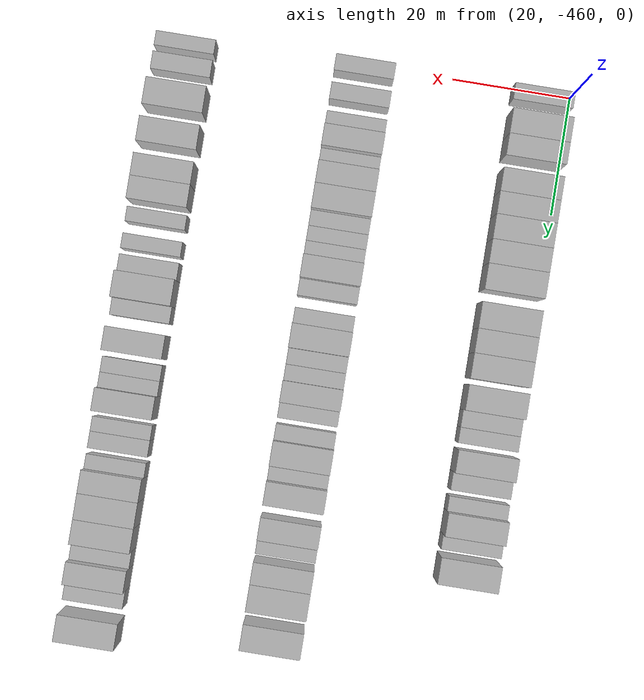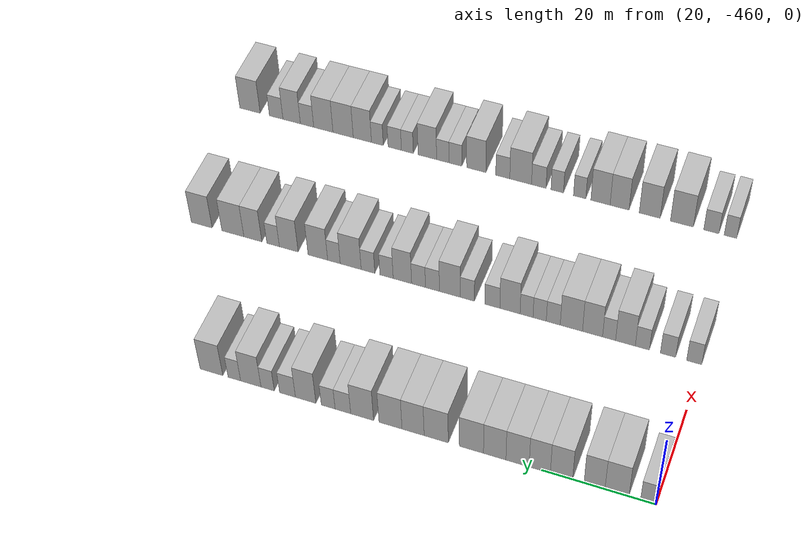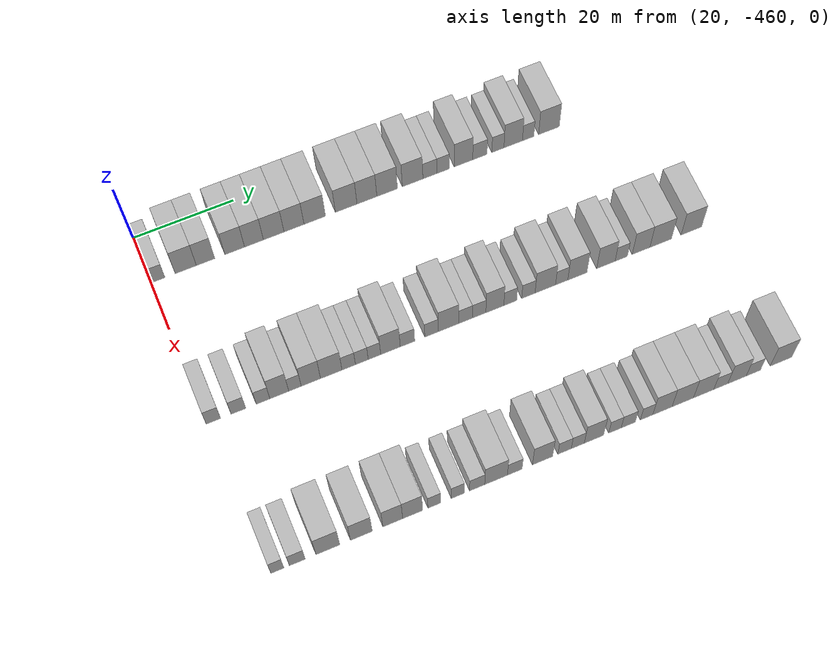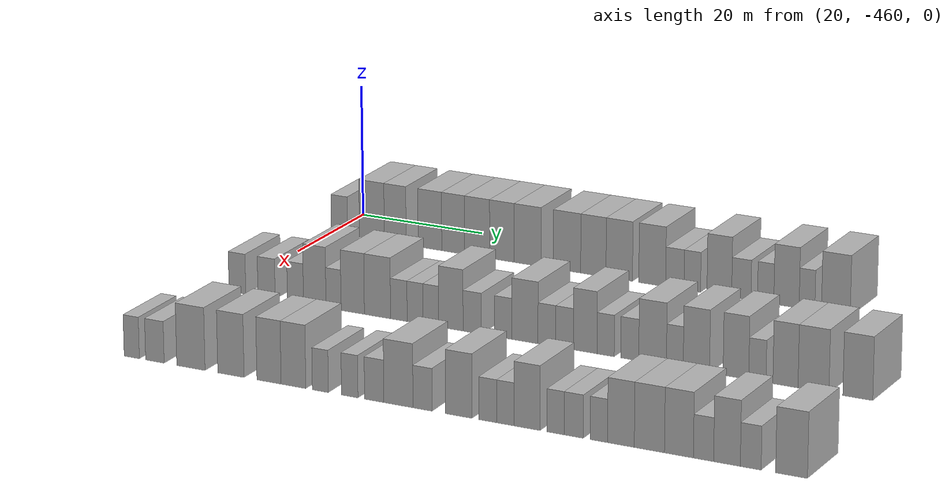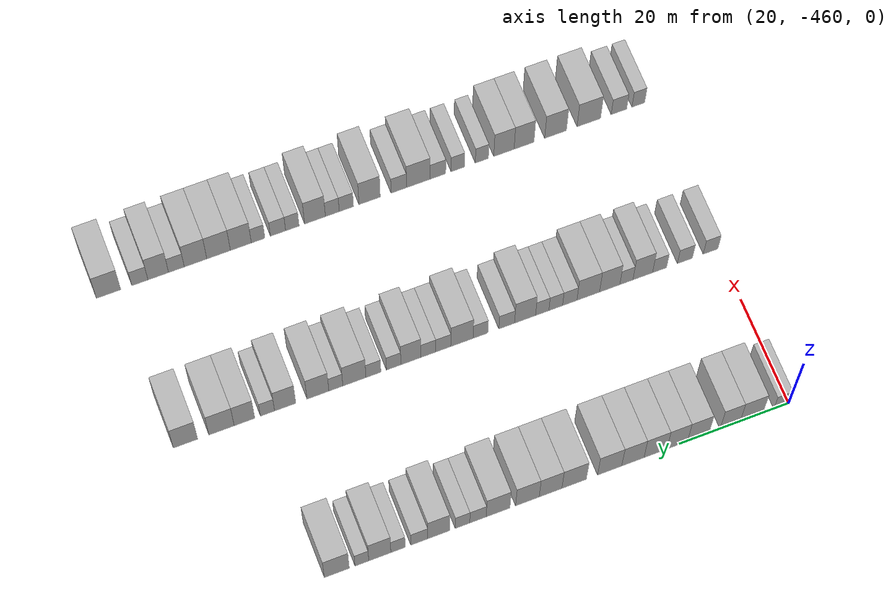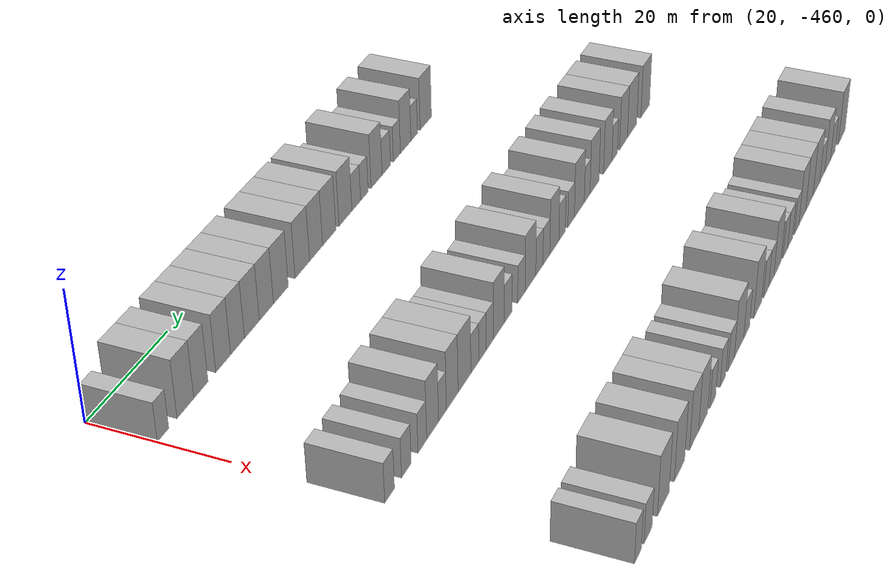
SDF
<sdf version="1.6">
 <world name="default">
  <model name="building_1">
   <static>1</static>
   <pose>25.0000 -458.6161 0 0.000000 0.000000 0.000000</pose>
   <link name="link">
    <pose>0 0 3.00 0 0 0</pose>
    <collision name="collision"><geometry><box><size>10.0000 2.7677 6.0000</size></box></geometry></collision>
    <visual name="visual">
     <cast_shadows>0</cast_shadows>
     <geometry><box><size>10.0000 2.7677 6.0000</size></box></geometry>
     <material>
      <script>
       <uri>model://HANNAS_wall/materials/scripts</uri>
       <uri>model://HANNAS_wall/materials/textures</uri>
       <name>vrc/HANNAS_wall</name>
      </script>
     </material>
    </visual>
   </link>
  </model>
  <model name="building_2">
   <static>1</static>
   <pose>25.0000 -453.1422 0 0.000000 0.000000 0.000000</pose>
   <link name="link">
    <pose>0 0 4.50 0 0 0</pose>
    <collision name="collision"><geometry><box><size>10.0000 4.1801 9.0000</size></box></geometry></collision>
    <visual name="visual">
     <cast_shadows>0</cast_shadows>
     <geometry><box><size>10.0000 4.1801 9.0000</size></box></geometry>
     <material>
      <script>
       <uri>model://HANNAS_wall/materials/scripts</uri>
       <uri>model://HANNAS_wall/materials/textures</uri>
       <name>vrc/HANNAS_wall</name>
      </script>
     </material>
    </visual>
   </link>
  </model>
  <model name="building_3">
   <static>1</static>
   <pose>25.0000 -449.2247 0 0.000000 0.000000 0.000000</pose>
   <link name="link">
    <pose>0 0 4.50 0 0 0</pose>
    <collision name="collision"><geometry><box><size>10.0000 3.6550 9.0000</size></box></geometry></collision>
    <visual name="visual">
     <cast_shadows>0</cast_shadows>
     <geometry><box><size>10.0000 3.6550 9.0000</size></box></geometry>
     <material>
      <script>
       <uri>model://HANNAS_wall/materials/scripts</uri>
       <uri>model://HANNAS_wall/materials/textures</uri>
       <name>vrc/HANNAS_wall</name>
      </script>
     </material>
    </visual>
   </link>
  </model>
  <model name="building_4">
   <static>1</static>
   <pose>25.0000 -443.4356 0 0.000000 0.000000 0.000000</pose>
   <link name="link">
    <pose>0 0 4.50 0 0 0</pose>
    <collision name="collision"><geometry><box><size>10.0000 3.9232 9.0000</size></box></geometry></collision>
    <visual name="visual">
     <cast_shadows>0</cast_shadows>
     <geometry><box><size>10.0000 3.9232 9.0000</size></box></geometry>
     <material>
      <script>
       <uri>model://HANNAS_wall/materials/scripts</uri>
       <uri>model://HANNAS_wall/materials/textures</uri>
       <name>vrc/HANNAS_wall</name>
      </script>
     </material>
    </visual>
   </link>
  </model>
  <model name="building_5">
   <static>1</static>
   <pose>25.0000 -439.5945 0 0.000000 0.000000 0.000000</pose>
   <link name="link">
    <pose>0 0 4.50 0 0 0</pose>
    <collision name="collision"><geometry><box><size>10.0000 3.7590 9.0000</size></box></geometry></collision>
    <visual name="visual">
     <cast_shadows>0</cast_shadows>
     <geometry><box><size>10.0000 3.7590 9.0000</size></box></geometry>
     <material>
      <script>
       <uri>model://HANNAS_wall/materials/scripts</uri>
       <uri>model://HANNAS_wall/materials/textures</uri>
       <name>vrc/HANNAS_wall</name>
      </script>
     </material>
    </visual>
   </link>
  </model>
  <model name="building_6">
   <static>1</static>
   <pose>25.0000 -435.6475 0 0.000000 0.000000 0.000000</pose>
   <link name="link">
    <pose>0 0 4.50 0 0 0</pose>
    <collision name="collision"><geometry><box><size>10.0000 4.1350 9.0000</size></box></geometry></collision>
    <visual name="visual">
     <cast_shadows>0</cast_shadows>
     <geometry><box><size>10.0000 4.1350 9.0000</size></box></geometry>
     <material>
      <script>
       <uri>model://HANNAS_wall/materials/scripts</uri>
       <uri>model://HANNAS_wall/materials/textures</uri>
       <name>vrc/HANNAS_wall</name>
      </script>
     </material>
    </visual>
   </link>
  </model>
  <model name="building_7">
   <static>1</static>
   <pose>25.0000 -431.5682 0 0.000000 0.000000 0.000000</pose>
   <link name="link">
    <pose>0 0 4.50 0 0 0</pose>
    <collision name="collision"><geometry><box><size>10.0000 4.0237 9.0000</size></box></geometry></collision>
    <visual name="visual">
     <cast_shadows>0</cast_shadows>
     <geometry><box><size>10.0000 4.0237 9.0000</size></box></geometry>
     <material>
      <script>
       <uri>model://HANNAS_wall/materials/scripts</uri>
       <uri>model://HANNAS_wall/materials/textures</uri>
       <name>vrc/HANNAS_wall</name>
      </script>
     </material>
    </visual>
   </link>
  </model>
  <model name="building_8">
   <static>1</static>
   <pose>25.0000 -427.3816 0 0.000000 0.000000 0.000000</pose>
   <link name="link">
    <pose>0 0 4.50 0 0 0</pose>
    <collision name="collision"><geometry><box><size>10.0000 4.3495 9.0000</size></box></geometry></collision>
    <visual name="visual">
     <cast_shadows>0</cast_shadows>
     <geometry><box><size>10.0000 4.3495 9.0000</size></box></geometry>
     <material>
      <script>
       <uri>model://HANNAS_wall/materials/scripts</uri>
       <uri>model://HANNAS_wall/materials/textures</uri>
       <name>vrc/HANNAS_wall</name>
      </script>
     </material>
    </visual>
   </link>
  </model>
  <model name="building_9">
   <static>1</static>
   <pose>25.0000 -421.0056 0 0.000000 0.000000 0.000000</pose>
   <link name="link">
    <pose>0 0 4.50 0 0 0</pose>
    <collision name="collision"><geometry><box><size>10.0000 4.4024 9.0000</size></box></geometry></collision>
    <visual name="visual">
     <cast_shadows>0</cast_shadows>
     <geometry><box><size>10.0000 4.4024 9.0000</size></box></geometry>
     <material>
      <script>
       <uri>model://HANNAS_wall/materials/scripts</uri>
       <uri>model://HANNAS_wall/materials/textures</uri>
       <name>vrc/HANNAS_wall</name>
      </script>
     </material>
    </visual>
   </link>
  </model>
  <model name="building_10">
   <static>1</static>
   <pose>25.0000 -416.7751 0 0.000000 0.000000 0.000000</pose>
   <link name="link">
    <pose>0 0 4.50 0 0 0</pose>
    <collision name="collision"><geometry><box><size>10.0000 4.0587 9.0000</size></box></geometry></collision>
    <visual name="visual">
     <cast_shadows>0</cast_shadows>
     <geometry><box><size>10.0000 4.0587 9.0000</size></box></geometry>
     <material>
      <script>
       <uri>model://HANNAS_wall/materials/scripts</uri>
       <uri>model://HANNAS_wall/materials/textures</uri>
       <name>vrc/HANNAS_wall</name>
      </script>
     </material>
    </visual>
   </link>
  </model>
  <model name="building_11">
   <static>1</static>
   <pose>25.0000 -412.6336 0 0.000000 0.000000 0.000000</pose>
   <link name="link">
    <pose>0 0 4.50 0 0 0</pose>
    <collision name="collision"><geometry><box><size>10.0000 4.2243 9.0000</size></box></geometry></collision>
    <visual name="visual">
     <cast_shadows>0</cast_shadows>
     <geometry><box><size>10.0000 4.2243 9.0000</size></box></geometry>
     <material>
      <script>
       <uri>model://HANNAS_wall/materials/scripts</uri>
       <uri>model://HANNAS_wall/materials/textures</uri>
       <name>vrc/HANNAS_wall</name>
      </script>
     </material>
    </visual>
   </link>
  </model>
  <model name="building_12">
   <static>1</static>
   <pose>25.0000 -407.3977 0 0.000000 0.000000 0.000000</pose>
   <link name="link">
    <pose>0 0 4.50 0 0 0</pose>
    <collision name="collision"><geometry><box><size>10.0000 4.2476 9.0000</size></box></geometry></collision>
    <visual name="visual">
     <cast_shadows>0</cast_shadows>
     <geometry><box><size>10.0000 4.2476 9.0000</size></box></geometry>
     <material>
      <script>
       <uri>model://HANNAS_wall/materials/scripts</uri>
       <uri>model://HANNAS_wall/materials/textures</uri>
       <name>vrc/HANNAS_wall</name>
      </script>
     </material>
    </visual>
   </link>
  </model>
  <model name="building_13">
   <static>1</static>
   <pose>25.0000 -403.8219 0 0.000000 0.000000 0.000000</pose>
   <link name="link">
    <pose>0 0 3.00 0 0 0</pose>
    <collision name="collision"><geometry><box><size>10.0000 2.9038 6.0000</size></box></geometry></collision>
    <visual name="visual">
     <cast_shadows>0</cast_shadows>
     <geometry><box><size>10.0000 2.9038 6.0000</size></box></geometry>
     <material>
      <script>
       <uri>model://HANNAS_wall/materials/scripts</uri>
       <uri>model://HANNAS_wall/materials/textures</uri>
       <name>vrc/HANNAS_wall</name>
      </script>
     </material>
    </visual>
   </link>
  </model>
  <model name="building_14">
   <static>1</static>
   <pose>25.0000 -401.0797 0 0.000000 0.000000 0.000000</pose>
   <link name="link">
    <pose>0 0 3.00 0 0 0</pose>
    <collision name="collision"><geometry><box><size>10.0000 2.5807 6.0000</size></box></geometry></collision>
    <visual name="visual">
     <cast_shadows>0</cast_shadows>
     <geometry><box><size>10.0000 2.5807 6.0000</size></box></geometry>
     <material>
      <script>
       <uri>model://HANNAS_wall/materials/scripts</uri>
       <uri>model://HANNAS_wall/materials/textures</uri>
       <name>vrc/HANNAS_wall</name>
      </script>
     </material>
    </visual>
   </link>
  </model>
  <model name="building_15">
   <static>1</static>
   <pose>25.0000 -396.8624 0 0.000000 0.000000 0.000000</pose>
   <link name="link">
    <pose>0 0 4.50 0 0 0</pose>
    <collision name="collision"><geometry><box><size>10.0000 3.8540 9.0000</size></box></geometry></collision>
    <visual name="visual">
     <cast_shadows>0</cast_shadows>
     <geometry><box><size>10.0000 3.8540 9.0000</size></box></geometry>
     <material>
      <script>
       <uri>model://HANNAS_wall/materials/scripts</uri>
       <uri>model://HANNAS_wall/materials/textures</uri>
       <name>vrc/HANNAS_wall</name>
      </script>
     </material>
    </visual>
   </link>
  </model>
  <model name="building_16">
   <static>1</static>
   <pose>25.0000 -393.4373 0 0.000000 0.000000 0.000000</pose>
   <link name="link">
    <pose>0 0 3.00 0 0 0</pose>
    <collision name="collision"><geometry><box><size>10.0000 2.9962 6.0000</size></box></geometry></collision>
    <visual name="visual">
     <cast_shadows>0</cast_shadows>
     <geometry><box><size>10.0000 2.9962 6.0000</size></box></geometry>
     <material>
      <script>
       <uri>model://HANNAS_wall/materials/scripts</uri>
       <uri>model://HANNAS_wall/materials/textures</uri>
       <name>vrc/HANNAS_wall</name>
      </script>
     </material>
    </visual>
   </link>
  </model>
  <model name="building_17">
   <static>1</static>
   <pose>25.0000 -389.6744 0 0.000000 0.000000 0.000000</pose>
   <link name="link">
    <pose>0 0 3.00 0 0 0</pose>
    <collision name="collision"><geometry><box><size>10.0000 2.5295 6.0000</size></box></geometry></collision>
    <visual name="visual">
     <cast_shadows>0</cast_shadows>
     <geometry><box><size>10.0000 2.5295 6.0000</size></box></geometry>
     <material>
      <script>
       <uri>model://HANNAS_wall/materials/scripts</uri>
       <uri>model://HANNAS_wall/materials/textures</uri>
       <name>vrc/HANNAS_wall</name>
      </script>
     </material>
    </visual>
   </link>
  </model>
  <model name="building_18">
   <static>1</static>
   <pose>25.0000 -386.4665 0 0.000000 0.000000 0.000000</pose>
   <link name="link">
    <pose>0 0 4.50 0 0 0</pose>
    <collision name="collision"><geometry><box><size>10.0000 3.8864 9.0000</size></box></geometry></collision>
    <visual name="visual">
     <cast_shadows>0</cast_shadows>
     <geometry><box><size>10.0000 3.8864 9.0000</size></box></geometry>
     <material>
      <script>
       <uri>model://HANNAS_wall/materials/scripts</uri>
       <uri>model://HANNAS_wall/materials/textures</uri>
       <name>vrc/HANNAS_wall</name>
      </script>
     </material>
    </visual>
   </link>
  </model>
  <model name="building_19">
   <static>1</static>
   <pose>25.0000 -383.3175 0 0.000000 0.000000 0.000000</pose>
   <link name="link">
    <pose>0 0 3.00 0 0 0</pose>
    <collision name="collision"><geometry><box><size>10.0000 2.4115 6.0000</size></box></geometry></collision>
    <visual name="visual">
     <cast_shadows>0</cast_shadows>
     <geometry><box><size>10.0000 2.4115 6.0000</size></box></geometry>
     <material>
      <script>
       <uri>model://HANNAS_wall/materials/scripts</uri>
       <uri>model://HANNAS_wall/materials/textures</uri>
       <name>vrc/HANNAS_wall</name>
      </script>
     </material>
    </visual>
   </link>
  </model>
  <model name="building_20">
   <static>1</static>
   <pose>25.0000 -378.9247 0 0.000000 0.000000 0.000000</pose>
   <link name="link">
    <pose>0 0 4.50 0 0 0</pose>
    <collision name="collision"><geometry><box><size>10.0000 4.3742 9.0000</size></box></geometry></collision>
    <visual name="visual">
     <cast_shadows>0</cast_shadows>
     <geometry><box><size>10.0000 4.3742 9.0000</size></box></geometry>
     <material>
      <script>
       <uri>model://HANNAS_wall/materials/scripts</uri>
       <uri>model://HANNAS_wall/materials/textures</uri>
       <name>vrc/HANNAS_wall</name>
      </script>
     </material>
    </visual>
   </link>
  </model>
  <model name="building_208">
   <static>1</static>
   <pose>55.0000 -458.6232 0 0.000000 0.000000 0.000000</pose>
   <link name="link">
    <pose>0 0 3.00 0 0 0</pose>
    <collision name="collision"><geometry><box><size>10.0000 2.7536 6.0000</size></box></geometry></collision>
    <visual name="visual">
     <cast_shadows>0</cast_shadows>
     <geometry><box><size>10.0000 2.7536 6.0000</size></box></geometry>
     <material>
      <script>
       <uri>model://HANNAS_wall/materials/scripts</uri>
       <uri>model://HANNAS_wall/materials/textures</uri>
       <name>vrc/HANNAS_wall</name>
      </script>
     </material>
    </visual>
   </link>
  </model>
  <model name="building_209">
   <static>1</static>
   <pose>55.0000 -453.8382 0 0.000000 0.000000 0.000000</pose>
   <link name="link">
    <pose>0 0 3.00 0 0 0</pose>
    <collision name="collision"><geometry><box><size>10.0000 2.8163 6.0000</size></box></geometry></collision>
    <visual name="visual">
     <cast_shadows>0</cast_shadows>
     <geometry><box><size>10.0000 2.8163 6.0000</size></box></geometry>
     <material>
      <script>
       <uri>model://HANNAS_wall/materials/scripts</uri>
       <uri>model://HANNAS_wall/materials/textures</uri>
       <name>vrc/HANNAS_wall</name>
      </script>
     </material>
    </visual>
   </link>
  </model>
  <model name="building_210">
   <static>1</static>
   <pose>55.0000 -449.1211 0 0.000000 0.000000 0.000000</pose>
   <link name="link">
    <pose>0 0 3.00 0 0 0</pose>
    <collision name="collision"><geometry><box><size>10.0000 2.6180 6.0000</size></box></geometry></collision>
    <visual name="visual">
     <cast_shadows>0</cast_shadows>
     <geometry><box><size>10.0000 2.6180 6.0000</size></box></geometry>
     <material>
      <script>
       <uri>model://HANNAS_wall/materials/scripts</uri>
       <uri>model://HANNAS_wall/materials/textures</uri>
       <name>vrc/HANNAS_wall</name>
      </script>
     </material>
    </visual>
   </link>
  </model>
  <model name="building_211">
   <static>1</static>
   <pose>55.0000 -445.9911 0 0.000000 0.000000 0.000000</pose>
   <link name="link">
    <pose>0 0 4.50 0 0 0</pose>
    <collision name="collision"><geometry><box><size>10.0000 3.6418 9.0000</size></box></geometry></collision>
    <visual name="visual">
     <cast_shadows>0</cast_shadows>
     <geometry><box><size>10.0000 3.6418 9.0000</size></box></geometry>
     <material>
      <script>
       <uri>model://HANNAS_wall/materials/scripts</uri>
       <uri>model://HANNAS_wall/materials/textures</uri>
       <name>vrc/HANNAS_wall</name>
      </script>
     </material>
    </visual>
   </link>
  </model>
  <model name="building_212">
   <static>1</static>
   <pose>55.0000 -442.9572 0 0.000000 0.000000 0.000000</pose>
   <link name="link">
    <pose>0 0 3.00 0 0 0</pose>
    <collision name="collision"><geometry><box><size>10.0000 2.4260 6.0000</size></box></geometry></collision>
    <visual name="visual">
     <cast_shadows>0</cast_shadows>
     <geometry><box><size>10.0000 2.4260 6.0000</size></box></geometry>
     <material>
      <script>
       <uri>model://HANNAS_wall/materials/scripts</uri>
       <uri>model://HANNAS_wall/materials/textures</uri>
       <name>vrc/HANNAS_wall</name>
      </script>
     </material>
    </visual>
   </link>
  </model>
  <model name="building_213">
   <static>1</static>
   <pose>55.0000 -439.8711 0 0.000000 0.000000 0.000000</pose>
   <link name="link">
    <pose>0 0 4.50 0 0 0</pose>
    <collision name="collision"><geometry><box><size>10.0000 3.7462 9.0000</size></box></geometry></collision>
    <visual name="visual">
     <cast_shadows>0</cast_shadows>
     <geometry><box><size>10.0000 3.7462 9.0000</size></box></geometry>
     <material>
      <script>
       <uri>model://HANNAS_wall/materials/scripts</uri>
       <uri>model://HANNAS_wall/materials/textures</uri>
       <name>vrc/HANNAS_wall</name>
      </script>
     </material>
    </visual>
   </link>
  </model>
  <model name="building_214">
   <static>1</static>
   <pose>55.0000 -435.9100 0 0.000000 0.000000 0.000000</pose>
   <link name="link">
    <pose>0 0 4.50 0 0 0</pose>
    <collision name="collision"><geometry><box><size>10.0000 4.1759 9.0000</size></box></geometry></collision>
    <visual name="visual">
     <cast_shadows>0</cast_shadows>
     <geometry><box><size>10.0000 4.1759 9.0000</size></box></geometry>
     <material>
      <script>
       <uri>model://HANNAS_wall/materials/scripts</uri>
       <uri>model://HANNAS_wall/materials/textures</uri>
       <name>vrc/HANNAS_wall</name>
      </script>
     </material>
    </visual>
   </link>
  </model>
  <model name="building_215">
   <static>1</static>
   <pose>55.0000 -432.5032 0 0.000000 0.000000 0.000000</pose>
   <link name="link">
    <pose>0 0 3.00 0 0 0</pose>
    <collision name="collision"><geometry><box><size>10.0000 2.6378 6.0000</size></box></geometry></collision>
    <visual name="visual">
     <cast_shadows>0</cast_shadows>
     <geometry><box><size>10.0000 2.6378 6.0000</size></box></geometry>
     <material>
      <script>
       <uri>model://HANNAS_wall/materials/scripts</uri>
       <uri>model://HANNAS_wall/materials/textures</uri>
       <name>vrc/HANNAS_wall</name>
      </script>
     </material>
    </visual>
   </link>
  </model>
  <model name="building_216">
   <static>1</static>
   <pose>55.0000 -429.9304 0 0.000000 0.000000 0.000000</pose>
   <link name="link">
    <pose>0 0 3.00 0 0 0</pose>
    <collision name="collision"><geometry><box><size>10.0000 2.5078 6.0000</size></box></geometry></collision>
    <visual name="visual">
     <cast_shadows>0</cast_shadows>
     <geometry><box><size>10.0000 2.5078 6.0000</size></box></geometry>
     <material>
      <script>
       <uri>model://HANNAS_wall/materials/scripts</uri>
       <uri>model://HANNAS_wall/materials/textures</uri>
       <name>vrc/HANNAS_wall</name>
      </script>
     </material>
    </visual>
   </link>
  </model>
  <model name="building_217">
   <static>1</static>
   <pose>55.0000 -427.4491 0 0.000000 0.000000 0.000000</pose>
   <link name="link">
    <pose>0 0 3.00 0 0 0</pose>
    <collision name="collision"><geometry><box><size>10.0000 2.4548 6.0000</size></box></geometry></collision>
    <visual name="visual">
     <cast_shadows>0</cast_shadows>
     <geometry><box><size>10.0000 2.4548 6.0000</size></box></geometry>
     <material>
      <script>
       <uri>model://HANNAS_wall/materials/scripts</uri>
       <uri>model://HANNAS_wall/materials/textures</uri>
       <name>vrc/HANNAS_wall</name>
      </script>
     </material>
    </visual>
   </link>
  </model>
  <model name="building_218">
   <static>1</static>
   <pose>55.0000 -424.2969 0 0.000000 0.000000 0.000000</pose>
   <link name="link">
    <pose>0 0 4.50 0 0 0</pose>
    <collision name="collision"><geometry><box><size>10.0000 3.8495 9.0000</size></box></geometry></collision>
    <visual name="visual">
     <cast_shadows>0</cast_shadows>
     <geometry><box><size>10.0000 3.8495 9.0000</size></box></geometry>
     <material>
      <script>
       <uri>model://HANNAS_wall/materials/scripts</uri>
       <uri>model://HANNAS_wall/materials/textures</uri>
       <name>vrc/HANNAS_wall</name>
      </script>
     </material>
    </visual>
   </link>
  </model>
  <model name="building_219">
   <static>1</static>
   <pose>55.0000 -420.9403 0 0.000000 0.000000 0.000000</pose>
   <link name="link">
    <pose>0 0 3.00 0 0 0</pose>
    <collision name="collision"><geometry><box><size>10.0000 2.8637 6.0000</size></box></geometry></collision>
    <visual name="visual">
     <cast_shadows>0</cast_shadows>
     <geometry><box><size>10.0000 2.8637 6.0000</size></box></geometry>
     <material>
      <script>
       <uri>model://HANNAS_wall/materials/scripts</uri>
       <uri>model://HANNAS_wall/materials/textures</uri>
       <name>vrc/HANNAS_wall</name>
      </script>
     </material>
    </visual>
   </link>
  </model>
  <model name="building_220">
   <static>1</static>
   <pose>55.0000 -416.1556 0 0.000000 0.000000 0.000000</pose>
   <link name="link">
    <pose>0 0 3.00 0 0 0</pose>
    <collision name="collision"><geometry><box><size>10.0000 2.7057 6.0000</size></box></geometry></collision>
    <visual name="visual">
     <cast_shadows>0</cast_shadows>
     <geometry><box><size>10.0000 2.7057 6.0000</size></box></geometry>
     <material>
      <script>
       <uri>model://HANNAS_wall/materials/scripts</uri>
       <uri>model://HANNAS_wall/materials/textures</uri>
       <name>vrc/HANNAS_wall</name>
      </script>
     </material>
    </visual>
   </link>
  </model>
  <model name="building_221">
   <static>1</static>
   <pose>55.0000 -412.7733 0 0.000000 0.000000 0.000000</pose>
   <link name="link">
    <pose>0 0 4.50 0 0 0</pose>
    <collision name="collision"><geometry><box><size>10.0000 4.0590 9.0000</size></box></geometry></collision>
    <visual name="visual">
     <cast_shadows>0</cast_shadows>
     <geometry><box><size>10.0000 4.0590 9.0000</size></box></geometry>
     <material>
      <script>
       <uri>model://HANNAS_wall/materials/scripts</uri>
       <uri>model://HANNAS_wall/materials/textures</uri>
       <name>vrc/HANNAS_wall</name>
      </script>
     </material>
    </visual>
   </link>
  </model>
  <model name="building_222">
   <static>1</static>
   <pose>55.0000 -409.3810 0 0.000000 0.000000 0.000000</pose>
   <link name="link">
    <pose>0 0 3.00 0 0 0</pose>
    <collision name="collision"><geometry><box><size>10.0000 2.7257 6.0000</size></box></geometry></collision>
    <visual name="visual">
     <cast_shadows>0</cast_shadows>
     <geometry><box><size>10.0000 2.7257 6.0000</size></box></geometry>
     <material>
      <script>
       <uri>model://HANNAS_wall/materials/scripts</uri>
       <uri>model://HANNAS_wall/materials/textures</uri>
       <name>vrc/HANNAS_wall</name>
      </script>
     </material>
    </visual>
   </link>
  </model>
  <model name="building_223">
   <static>1</static>
   <pose>55.0000 -406.6662 0 0.000000 0.000000 0.000000</pose>
   <link name="link">
    <pose>0 0 3.00 0 0 0</pose>
    <collision name="collision"><geometry><box><size>10.0000 2.7038 6.0000</size></box></geometry></collision>
    <visual name="visual">
     <cast_shadows>0</cast_shadows>
     <geometry><box><size>10.0000 2.7038 6.0000</size></box></geometry>
     <material>
      <script>
       <uri>model://HANNAS_wall/materials/scripts</uri>
       <uri>model://HANNAS_wall/materials/textures</uri>
       <name>vrc/HANNAS_wall</name>
      </script>
     </material>
    </visual>
   </link>
  </model>
  <model name="building_224">
   <static>1</static>
   <pose>55.0000 -403.5092 0 0.000000 0.000000 0.000000</pose>
   <link name="link">
    <pose>0 0 4.50 0 0 0</pose>
    <collision name="collision"><geometry><box><size>10.0000 3.6102 9.0000</size></box></geometry></collision>
    <visual name="visual">
     <cast_shadows>0</cast_shadows>
     <geometry><box><size>10.0000 3.6102 9.0000</size></box></geometry>
     <material>
      <script>
       <uri>model://HANNAS_wall/materials/scripts</uri>
       <uri>model://HANNAS_wall/materials/textures</uri>
       <name>vrc/HANNAS_wall</name>
      </script>
     </material>
    </visual>
   </link>
  </model>
  <model name="building_225">
   <static>1</static>
   <pose>55.0000 -400.4007 0 0.000000 0.000000 0.000000</pose>
   <link name="link">
    <pose>0 0 3.00 0 0 0</pose>
    <collision name="collision"><geometry><box><size>10.0000 2.6067 6.0000</size></box></geometry></collision>
    <visual name="visual">
     <cast_shadows>0</cast_shadows>
     <geometry><box><size>10.0000 2.6067 6.0000</size></box></geometry>
     <material>
      <script>
       <uri>model://HANNAS_wall/materials/scripts</uri>
       <uri>model://HANNAS_wall/materials/textures</uri>
       <name>vrc/HANNAS_wall</name>
      </script>
     </material>
    </visual>
   </link>
  </model>
  <model name="building_226">
   <static>1</static>
   <pose>55.0000 -396.7456 0 0.000000 0.000000 0.000000</pose>
   <link name="link">
    <pose>0 0 3.00 0 0 0</pose>
    <collision name="collision"><geometry><box><size>10.0000 2.7034 6.0000</size></box></geometry></collision>
    <visual name="visual">
     <cast_shadows>0</cast_shadows>
     <geometry><box><size>10.0000 2.7034 6.0000</size></box></geometry>
     <material>
      <script>
       <uri>model://HANNAS_wall/materials/scripts</uri>
       <uri>model://HANNAS_wall/materials/textures</uri>
       <name>vrc/HANNAS_wall</name>
      </script>
     </material>
    </visual>
   </link>
  </model>
  <model name="building_227">
   <static>1</static>
   <pose>55.0000 -393.3171 0 0.000000 0.000000 0.000000</pose>
   <link name="link">
    <pose>0 0 4.50 0 0 0</pose>
    <collision name="collision"><geometry><box><size>10.0000 4.1537 9.0000</size></box></geometry></collision>
    <visual name="visual">
     <cast_shadows>0</cast_shadows>
     <geometry><box><size>10.0000 4.1537 9.0000</size></box></geometry>
     <material>
      <script>
       <uri>model://HANNAS_wall/materials/scripts</uri>
       <uri>model://HANNAS_wall/materials/textures</uri>
       <name>vrc/HANNAS_wall</name>
      </script>
     </material>
    </visual>
   </link>
  </model>
  <model name="building_228">
   <static>1</static>
   <pose>55.0000 -389.9852 0 0.000000 0.000000 0.000000</pose>
   <link name="link">
    <pose>0 0 3.00 0 0 0</pose>
    <collision name="collision"><geometry><box><size>10.0000 2.5101 6.0000</size></box></geometry></collision>
    <visual name="visual">
     <cast_shadows>0</cast_shadows>
     <geometry><box><size>10.0000 2.5101 6.0000</size></box></geometry>
     <material>
      <script>
       <uri>model://HANNAS_wall/materials/scripts</uri>
       <uri>model://HANNAS_wall/materials/textures</uri>
       <name>vrc/HANNAS_wall</name>
      </script>
     </material>
    </visual>
   </link>
  </model>
  <model name="building_229">
   <static>1</static>
   <pose>55.0000 -386.7702 0 0.000000 0.000000 0.000000</pose>
   <link name="link">
    <pose>0 0 4.50 0 0 0</pose>
    <collision name="collision"><geometry><box><size>10.0000 3.9197 9.0000</size></box></geometry></collision>
    <visual name="visual">
     <cast_shadows>0</cast_shadows>
     <geometry><box><size>10.0000 3.9197 9.0000</size></box></geometry>
     <material>
      <script>
       <uri>model://HANNAS_wall/materials/scripts</uri>
       <uri>model://HANNAS_wall/materials/textures</uri>
       <name>vrc/HANNAS_wall</name>
      </script>
     </material>
    </visual>
   </link>
  </model>
  <model name="building_230">
   <static>1</static>
   <pose>55.0000 -380.9174 0 0.000000 0.000000 0.000000</pose>
   <link name="link">
    <pose>0 0 4.50 0 0 0</pose>
    <collision name="collision"><geometry><box><size>10.0000 3.7859 9.0000</size></box></geometry></collision>
    <visual name="visual">
     <cast_shadows>0</cast_shadows>
     <geometry><box><size>10.0000 3.7859 9.0000</size></box></geometry>
     <material>
      <script>
       <uri>model://HANNAS_wall/materials/scripts</uri>
       <uri>model://HANNAS_wall/materials/textures</uri>
       <name>vrc/HANNAS_wall</name>
      </script>
     </material>
    </visual>
   </link>
  </model>
  <model name="building_231">
   <static>1</static>
   <pose>55.0000 -377.7548 0 0.000000 0.000000 0.000000</pose>
   <link name="link">
    <pose>0 0 3.00 0 0 0</pose>
    <collision name="collision"><geometry><box><size>10.0000 2.5393 6.0000</size></box></geometry></collision>
    <visual name="visual">
     <cast_shadows>0</cast_shadows>
     <geometry><box><size>10.0000 2.5393 6.0000</size></box></geometry>
     <material>
      <script>
       <uri>model://HANNAS_wall/materials/scripts</uri>
       <uri>model://HANNAS_wall/materials/textures</uri>
       <name>vrc/HANNAS_wall</name>
      </script>
     </material>
    </visual>
   </link>
  </model>
  <model name="building_232">
   <static>1</static>
   <pose>55.0000 -373.6490 0 0.000000 0.000000 0.000000</pose>
   <link name="link">
    <pose>0 0 4.50 0 0 0</pose>
    <collision name="collision"><geometry><box><size>10.0000 3.6722 9.0000</size></box></geometry></collision>
    <visual name="visual">
     <cast_shadows>0</cast_shadows>
     <geometry><box><size>10.0000 3.6722 9.0000</size></box></geometry>
     <material>
      <script>
       <uri>model://HANNAS_wall/materials/scripts</uri>
       <uri>model://HANNAS_wall/materials/textures</uri>
       <name>vrc/HANNAS_wall</name>
      </script>
     </material>
    </visual>
   </link>
  </model>
  <model name="building_233">
   <static>1</static>
   <pose>55.0000 -369.5667 0 0.000000 0.000000 0.000000</pose>
   <link name="link">
    <pose>0 0 4.50 0 0 0</pose>
    <collision name="collision"><geometry><box><size>10.0000 4.4925 9.0000</size></box></geometry></collision>
    <visual name="visual">
     <cast_shadows>0</cast_shadows>
     <geometry><box><size>10.0000 4.4925 9.0000</size></box></geometry>
     <material>
      <script>
       <uri>model://HANNAS_wall/materials/scripts</uri>
       <uri>model://HANNAS_wall/materials/textures</uri>
       <name>vrc/HANNAS_wall</name>
      </script>
     </material>
    </visual>
   </link>
  </model>
  <model name="building_234">
   <static>1</static>
   <pose>55.0000 -363.1708 0 0.000000 0.000000 0.000000</pose>
   <link name="link">
    <pose>0 0 4.50 0 0 0</pose>
    <collision name="collision"><geometry><box><size>10.0000 4.2992 9.0000</size></box></geometry></collision>
    <visual name="visual">
     <cast_shadows>0</cast_shadows>
     <geometry><box><size>10.0000 4.2992 9.0000</size></box></geometry>
     <material>
      <script>
       <uri>model://HANNAS_wall/materials/scripts</uri>
       <uri>model://HANNAS_wall/materials/textures</uri>
       <name>vrc/HANNAS_wall</name>
      </script>
     </material>
    </visual>
   </link>
  </model>
  <model name="building_444">
   <static>1</static>
   <pose>85.0000 -457.7904 0 0.000000 0.000000 0.000000</pose>
   <link name="link">
    <pose>0 0 3.00 0 0 0</pose>
    <collision name="collision"><geometry><box><size>10.0000 2.4193 6.0000</size></box></geometry></collision>
    <visual name="visual">
     <cast_shadows>0</cast_shadows>
     <geometry><box><size>10.0000 2.4193 6.0000</size></box></geometry>
     <material>
      <script>
       <uri>model://HANNAS_wall/materials/scripts</uri>
       <uri>model://HANNAS_wall/materials/textures</uri>
       <name>vrc/HANNAS_wall</name>
      </script>
     </material>
    </visual>
   </link>
  </model>
  <model name="building_445">
   <static>1</static>
   <pose>85.0000 -454.1094 0 0.000000 0.000000 0.000000</pose>
   <link name="link">
    <pose>0 0 3.00 0 0 0</pose>
    <collision name="collision"><geometry><box><size>10.0000 2.9428 6.0000</size></box></geometry></collision>
    <visual name="visual">
     <cast_shadows>0</cast_shadows>
     <geometry><box><size>10.0000 2.9428 6.0000</size></box></geometry>
     <material>
      <script>
       <uri>model://HANNAS_wall/materials/scripts</uri>
       <uri>model://HANNAS_wall/materials/textures</uri>
       <name>vrc/HANNAS_wall</name>
      </script>
     </material>
    </visual>
   </link>
  </model>
  <model name="building_446">
   <static>1</static>
   <pose>85.0000 -448.4097 0 0.000000 0.000000 0.000000</pose>
   <link name="link">
    <pose>0 0 4.50 0 0 0</pose>
    <collision name="collision"><geometry><box><size>10.0000 4.4565 9.0000</size></box></geometry></collision>
    <visual name="visual">
     <cast_shadows>0</cast_shadows>
     <geometry><box><size>10.0000 4.4565 9.0000</size></box></geometry>
     <material>
      <script>
       <uri>model://HANNAS_wall/materials/scripts</uri>
       <uri>model://HANNAS_wall/materials/textures</uri>
       <name>vrc/HANNAS_wall</name>
      </script>
     </material>
    </visual>
   </link>
  </model>
  <model name="building_447">
   <static>1</static>
   <pose>85.0000 -442.1291 0 0.000000 0.000000 0.000000</pose>
   <link name="link">
    <pose>0 0 4.50 0 0 0</pose>
    <collision name="collision"><geometry><box><size>10.0000 4.1046 9.0000</size></box></geometry></collision>
    <visual name="visual">
     <cast_shadows>0</cast_shadows>
     <geometry><box><size>10.0000 4.1046 9.0000</size></box></geometry>
     <material>
      <script>
       <uri>model://HANNAS_wall/materials/scripts</uri>
       <uri>model://HANNAS_wall/materials/textures</uri>
       <name>vrc/HANNAS_wall</name>
      </script>
     </material>
    </visual>
   </link>
  </model>
  <model name="building_448">
   <static>1</static>
   <pose>85.0000 -436.2049 0 0.000000 0.000000 0.000000</pose>
   <link name="link">
    <pose>0 0 4.50 0 0 0</pose>
    <collision name="collision"><geometry><box><size>10.0000 3.7438 9.0000</size></box></geometry></collision>
    <visual name="visual">
     <cast_shadows>0</cast_shadows>
     <geometry><box><size>10.0000 3.7438 9.0000</size></box></geometry>
     <material>
      <script>
       <uri>model://HANNAS_wall/materials/scripts</uri>
       <uri>model://HANNAS_wall/materials/textures</uri>
       <name>vrc/HANNAS_wall</name>
      </script>
     </material>
    </visual>
   </link>
  </model>
  <model name="building_449">
   <static>1</static>
   <pose>85.0000 -432.4294 0 0.000000 0.000000 0.000000</pose>
   <link name="link">
    <pose>0 0 4.50 0 0 0</pose>
    <collision name="collision"><geometry><box><size>10.0000 3.8073 9.0000</size></box></geometry></collision>
    <visual name="visual">
     <cast_shadows>0</cast_shadows>
     <geometry><box><size>10.0000 3.8073 9.0000</size></box></geometry>
     <material>
      <script>
       <uri>model://HANNAS_wall/materials/scripts</uri>
       <uri>model://HANNAS_wall/materials/textures</uri>
       <name>vrc/HANNAS_wall</name>
      </script>
     </material>
    </visual>
   </link>
  </model>
  <model name="building_450">
   <static>1</static>
   <pose>85.0000 -428.2981 0 0.000000 0.000000 0.000000</pose>
   <link name="link">
    <pose>0 0 3.00 0 0 0</pose>
    <collision name="collision"><geometry><box><size>10.0000 2.4552 6.0000</size></box></geometry></collision>
    <visual name="visual">
     <cast_shadows>0</cast_shadows>
     <geometry><box><size>10.0000 2.4552 6.0000</size></box></geometry>
     <material>
      <script>
       <uri>model://HANNAS_wall/materials/scripts</uri>
       <uri>model://HANNAS_wall/materials/textures</uri>
       <name>vrc/HANNAS_wall</name>
      </script>
     </material>
    </visual>
   </link>
  </model>
  <model name="building_451">
   <static>1</static>
   <pose>85.0000 -423.8178 0 0.000000 0.000000 0.000000</pose>
   <link name="link">
    <pose>0 0 3.00 0 0 0</pose>
    <collision name="collision"><geometry><box><size>10.0000 2.5053 6.0000</size></box></geometry></collision>
    <visual name="visual">
     <cast_shadows>0</cast_shadows>
     <geometry><box><size>10.0000 2.5053 6.0000</size></box></geometry>
     <material>
      <script>
       <uri>model://HANNAS_wall/materials/scripts</uri>
       <uri>model://HANNAS_wall/materials/textures</uri>
       <name>vrc/HANNAS_wall</name>
      </script>
     </material>
    </visual>
   </link>
  </model>
  <model name="building_452">
   <static>1</static>
   <pose>85.0000 -420.1102 0 0.000000 0.000000 0.000000</pose>
   <link name="link">
    <pose>0 0 3.00 0 0 0</pose>
    <collision name="collision"><geometry><box><size>10.0000 2.9099 6.0000</size></box></geometry></collision>
    <visual name="visual">
     <cast_shadows>0</cast_shadows>
     <geometry><box><size>10.0000 2.9099 6.0000</size></box></geometry>
     <material>
      <script>
       <uri>model://HANNAS_wall/materials/scripts</uri>
       <uri>model://HANNAS_wall/materials/textures</uri>
       <name>vrc/HANNAS_wall</name>
      </script>
     </material>
    </visual>
   </link>
  </model>
  <model name="building_453">
   <static>1</static>
   <pose>85.0000 -416.4602 0 0.000000 0.000000 0.000000</pose>
   <link name="link">
    <pose>0 0 4.50 0 0 0</pose>
    <collision name="collision"><geometry><box><size>10.0000 4.3902 9.0000</size></box></geometry></collision>
    <visual name="visual">
     <cast_shadows>0</cast_shadows>
     <geometry><box><size>10.0000 4.3902 9.0000</size></box></geometry>
     <material>
      <script>
       <uri>model://HANNAS_wall/materials/scripts</uri>
       <uri>model://HANNAS_wall/materials/textures</uri>
       <name>vrc/HANNAS_wall</name>
      </script>
     </material>
    </visual>
   </link>
  </model>
  <model name="building_454">
   <static>1</static>
   <pose>85.0000 -412.8390 0 0.000000 0.000000 0.000000</pose>
   <link name="link">
    <pose>0 0 3.00 0 0 0</pose>
    <collision name="collision"><geometry><box><size>10.0000 2.8522 6.0000</size></box></geometry></collision>
    <visual name="visual">
     <cast_shadows>0</cast_shadows>
     <geometry><box><size>10.0000 2.8522 6.0000</size></box></geometry>
     <material>
      <script>
       <uri>model://HANNAS_wall/materials/scripts</uri>
       <uri>model://HANNAS_wall/materials/textures</uri>
       <name>vrc/HANNAS_wall</name>
      </script>
     </material>
    </visual>
   </link>
  </model>
  <model name="building_455">
   <static>1</static>
   <pose>85.0000 -407.4444 0 0.000000 0.000000 0.000000</pose>
   <link name="link">
    <pose>0 0 4.50 0 0 0</pose>
    <collision name="collision"><geometry><box><size>10.0000 3.9371 9.0000</size></box></geometry></collision>
    <visual name="visual">
     <cast_shadows>0</cast_shadows>
     <geometry><box><size>10.0000 3.9371 9.0000</size></box></geometry>
     <material>
      <script>
       <uri>model://HANNAS_wall/materials/scripts</uri>
       <uri>model://HANNAS_wall/materials/textures</uri>
       <name>vrc/HANNAS_wall</name>
      </script>
     </material>
    </visual>
   </link>
  </model>
  <model name="building_456">
   <static>1</static>
   <pose>85.0000 -403.1580 0 0.000000 0.000000 0.000000</pose>
   <link name="link">
    <pose>0 0 3.00 0 0 0</pose>
    <collision name="collision"><geometry><box><size>10.0000 2.6357 6.0000</size></box></geometry></collision>
    <visual name="visual">
     <cast_shadows>0</cast_shadows>
     <geometry><box><size>10.0000 2.6357 6.0000</size></box></geometry>
     <material>
      <script>
       <uri>model://HANNAS_wall/materials/scripts</uri>
       <uri>model://HANNAS_wall/materials/textures</uri>
       <name>vrc/HANNAS_wall</name>
      </script>
     </material>
    </visual>
   </link>
  </model>
  <model name="building_457">
   <static>1</static>
   <pose>85.0000 -400.5656 0 0.000000 0.000000 0.000000</pose>
   <link name="link">
    <pose>0 0 3.00 0 0 0</pose>
    <collision name="collision"><geometry><box><size>10.0000 2.5492 6.0000</size></box></geometry></collision>
    <visual name="visual">
     <cast_shadows>0</cast_shadows>
     <geometry><box><size>10.0000 2.5492 6.0000</size></box></geometry>
     <material>
      <script>
       <uri>model://HANNAS_wall/materials/scripts</uri>
       <uri>model://HANNAS_wall/materials/textures</uri>
       <name>vrc/HANNAS_wall</name>
      </script>
     </material>
    </visual>
   </link>
  </model>
  <model name="building_458">
   <static>1</static>
   <pose>85.0000 -397.3807 0 0.000000 0.000000 0.000000</pose>
   <link name="link">
    <pose>0 0 4.50 0 0 0</pose>
    <collision name="collision"><geometry><box><size>10.0000 3.8207 9.0000</size></box></geometry></collision>
    <visual name="visual">
     <cast_shadows>0</cast_shadows>
     <geometry><box><size>10.0000 3.8207 9.0000</size></box></geometry>
     <material>
      <script>
       <uri>model://HANNAS_wall/materials/scripts</uri>
       <uri>model://HANNAS_wall/materials/textures</uri>
       <name>vrc/HANNAS_wall</name>
      </script>
     </material>
    </visual>
   </link>
  </model>
  <model name="building_459">
   <static>1</static>
   <pose>85.0000 -393.2320 0 0.000000 0.000000 0.000000</pose>
   <link name="link">
    <pose>0 0 3.00 0 0 0</pose>
    <collision name="collision"><geometry><box><size>10.0000 2.4767 6.0000</size></box></geometry></collision>
    <visual name="visual">
     <cast_shadows>0</cast_shadows>
     <geometry><box><size>10.0000 2.4767 6.0000</size></box></geometry>
     <material>
      <script>
       <uri>model://HANNAS_wall/materials/scripts</uri>
       <uri>model://HANNAS_wall/materials/textures</uri>
       <name>vrc/HANNAS_wall</name>
      </script>
     </material>
    </visual>
   </link>
  </model>
  <model name="building_460">
   <static>1</static>
   <pose>85.0000 -390.6006 0 0.000000 0.000000 0.000000</pose>
   <link name="link">
    <pose>0 0 3.00 0 0 0</pose>
    <collision name="collision"><geometry><box><size>10.0000 2.7862 6.0000</size></box></geometry></collision>
    <visual name="visual">
     <cast_shadows>0</cast_shadows>
     <geometry><box><size>10.0000 2.7862 6.0000</size></box></geometry>
     <material>
      <script>
       <uri>model://HANNAS_wall/materials/scripts</uri>
       <uri>model://HANNAS_wall/materials/textures</uri>
       <name>vrc/HANNAS_wall</name>
      </script>
     </material>
    </visual>
   </link>
  </model>
  <model name="building_461">
   <static>1</static>
   <pose>85.0000 -386.9667 0 0.000000 0.000000 0.000000</pose>
   <link name="link">
    <pose>0 0 3.00 0 0 0</pose>
    <collision name="collision"><geometry><box><size>10.0000 2.4815 6.0000</size></box></geometry></collision>
    <visual name="visual">
     <cast_shadows>0</cast_shadows>
     <geometry><box><size>10.0000 2.4815 6.0000</size></box></geometry>
     <material>
      <script>
       <uri>model://HANNAS_wall/materials/scripts</uri>
       <uri>model://HANNAS_wall/materials/textures</uri>
       <name>vrc/HANNAS_wall</name>
      </script>
     </material>
    </visual>
   </link>
  </model>
  <model name="building_462">
   <static>1</static>
   <pose>85.0000 -383.8089 0 0.000000 0.000000 0.000000</pose>
   <link name="link">
    <pose>0 0 4.50 0 0 0</pose>
    <collision name="collision"><geometry><box><size>10.0000 3.8342 9.0000</size></box></geometry></collision>
    <visual name="visual">
     <cast_shadows>0</cast_shadows>
     <geometry><box><size>10.0000 3.8342 9.0000</size></box></geometry>
     <material>
      <script>
       <uri>model://HANNAS_wall/materials/scripts</uri>
       <uri>model://HANNAS_wall/materials/textures</uri>
       <name>vrc/HANNAS_wall</name>
      </script>
     </material>
    </visual>
   </link>
  </model>
  <model name="building_463">
   <static>1</static>
   <pose>85.0000 -379.7467 0 0.000000 0.000000 0.000000</pose>
   <link name="link">
    <pose>0 0 4.50 0 0 0</pose>
    <collision name="collision"><geometry><box><size>10.0000 4.2901 9.0000</size></box></geometry></collision>
    <visual name="visual">
     <cast_shadows>0</cast_shadows>
     <geometry><box><size>10.0000 4.2901 9.0000</size></box></geometry>
     <material>
      <script>
       <uri>model://HANNAS_wall/materials/scripts</uri>
       <uri>model://HANNAS_wall/materials/textures</uri>
       <name>vrc/HANNAS_wall</name>
      </script>
     </material>
    </visual>
   </link>
  </model>
  <model name="building_464">
   <static>1</static>
   <pose>85.0000 -375.5596 0 0.000000 0.000000 0.000000</pose>
   <link name="link">
    <pose>0 0 4.50 0 0 0</pose>
    <collision name="collision"><geometry><box><size>10.0000 4.0841 9.0000</size></box></geometry></collision>
    <visual name="visual">
     <cast_shadows>0</cast_shadows>
     <geometry><box><size>10.0000 4.0841 9.0000</size></box></geometry>
     <material>
      <script>
       <uri>model://HANNAS_wall/materials/scripts</uri>
       <uri>model://HANNAS_wall/materials/textures</uri>
       <name>vrc/HANNAS_wall</name>
      </script>
     </material>
    </visual>
   </link>
  </model>
  <model name="building_465">
   <static>1</static>
   <pose>85.0000 -372.0933 0 0.000000 0.000000 0.000000</pose>
   <link name="link">
    <pose>0 0 3.00 0 0 0</pose>
    <collision name="collision"><geometry><box><size>10.0000 2.8485 6.0000</size></box></geometry></collision>
    <visual name="visual">
     <cast_shadows>0</cast_shadows>
     <geometry><box><size>10.0000 2.8485 6.0000</size></box></geometry>
     <material>
      <script>
       <uri>model://HANNAS_wall/materials/scripts</uri>
       <uri>model://HANNAS_wall/materials/textures</uri>
       <name>vrc/HANNAS_wall</name>
      </script>
     </material>
    </visual>
   </link>
  </model>
  <model name="building_466">
   <static>1</static>
   <pose>85.0000 -368.8019 0 0.000000 0.000000 0.000000</pose>
   <link name="link">
    <pose>0 0 4.50 0 0 0</pose>
    <collision name="collision"><geometry><box><size>10.0000 3.7343 9.0000</size></box></geometry></collision>
    <visual name="visual">
     <cast_shadows>0</cast_shadows>
     <geometry><box><size>10.0000 3.7343 9.0000</size></box></geometry>
     <material>
      <script>
       <uri>model://HANNAS_wall/materials/scripts</uri>
       <uri>model://HANNAS_wall/materials/textures</uri>
       <name>vrc/HANNAS_wall</name>
      </script>
     </material>
    </visual>
   </link>
  </model>
  <model name="building_467">
   <static>1</static>
   <pose>85.0000 -365.4811 0 0.000000 0.000000 0.000000</pose>
   <link name="link">
    <pose>0 0 3.00 0 0 0</pose>
    <collision name="collision"><geometry><box><size>10.0000 2.9074 6.0000</size></box></geometry></collision>
    <visual name="visual">
     <cast_shadows>0</cast_shadows>
     <geometry><box><size>10.0000 2.9074 6.0000</size></box></geometry>
     <material>
      <script>
       <uri>model://HANNAS_wall/materials/scripts</uri>
       <uri>model://HANNAS_wall/materials/textures</uri>
       <name>vrc/HANNAS_wall</name>
      </script>
     </material>
    </visual>
   </link>
  </model>
  <model name="building_468">
   <static>1</static>
   <pose>85.0000 -359.8302 0 0.000000 0.000000 0.000000</pose>
   <link name="link">
    <pose>0 0 4.50 0 0 0</pose>
    <collision name="collision"><geometry><box><size>10.0000 4.3945 9.0000</size></box></geometry></collision>
    <visual name="visual">
     <cast_shadows>0</cast_shadows>
     <geometry><box><size>10.0000 4.3945 9.0000</size></box></geometry>
     <material>
      <script>
       <uri>model://HANNAS_wall/materials/scripts</uri>
       <uri>model://HANNAS_wall/materials/textures</uri>
       <name>vrc/HANNAS_wall</name>
      </script>
     </material>
    </visual>
   </link>
  </model>
 </world>
</sdf>
